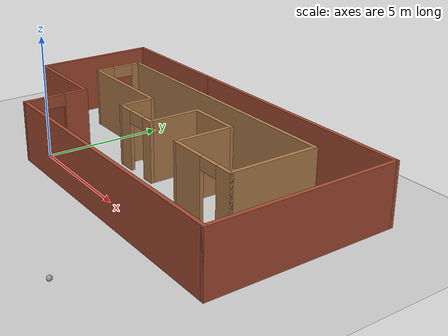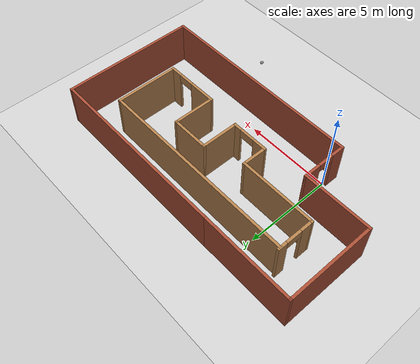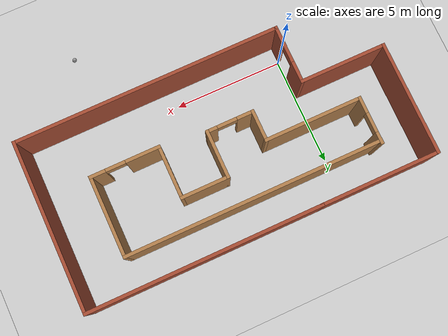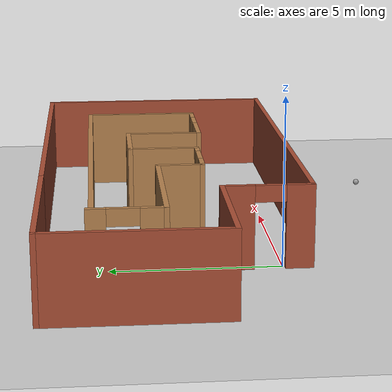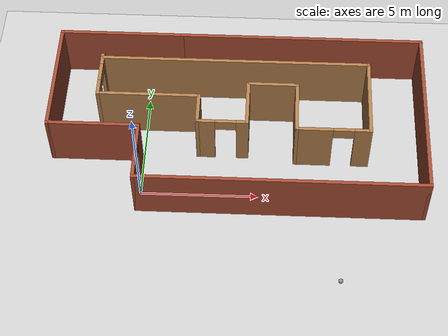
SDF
<sdf version="1.6">
 <world name="default">
  <light name="sun" type="directional">
   <pose>0 0 10 0 -0 0</pose>
   <diffuse>0.8 0.8 0.8 1</diffuse>
   <specular>0.2 0.2 0.2 1</specular>
   <attenuation>
    <range>1000</range>
    <constant>0.9</constant>
    <linear>0.01</linear>
    <quadratic>0.001</quadratic>
   </attenuation>
   <direction>-0.5 0.1 -0.9</direction>
  </light>
  <model name="ground_plane">
   <static>1</static>
   <link name="link">
    <collision name="collision">
     <geometry><plane><normal>0 0 1</normal><size>100 100</size></plane></geometry>
     <surface>
      <contact><collide_bitmask>65535</collide_bitmask></contact>
      <friction><ode><mu>100</mu><mu2>50</mu2></ode></friction>
     </surface>
    </collision>
    <visual name="visual">
     <cast_shadows>0</cast_shadows>
     <geometry><plane><normal>0 0 1</normal><size>100 100</size></plane></geometry>
     <material>
      <script><uri>file://media/materials/scripts/gazebo.material</uri><name>Gazebo/Grey</name></script>
     </material>
    </visual>
   </link>
  </model>
  <gravity>0 0 -9.8</gravity>
  <magnetic_field>6e-06 2.3e-05 -4.2e-05</magnetic_field>
  <atmosphere type="adiabatic"/>
  <physics name="default_physics" default="0" type="ode">
   <max_step_size>0.001</max_step_size>
   <real_time_factor>1</real_time_factor>
   <real_time_update_rate>1000</real_time_update_rate>
  </physics>
  <scene><ambient>0.4 0.4 0.4 1</ambient><background>0.7 0.7 0.7 1</background><shadows>1</shadows></scene>
  <spherical_coordinates>
   <surface_model>EARTH_WGS84</surface_model>
   <latitude_deg>0</latitude_deg>
   <longitude_deg>0</longitude_deg>
   <elevation>0</elevation>
   <heading_deg>0</heading_deg>
  </spherical_coordinates>
  <model name="newworld">
   <pose>4.01971 3.03029 0 0 -0 0</pose>
   <link name="Wall_10">
    <collision name="Wall_10_Collision">
     <geometry><box><size>4 0.15 2.5</size></box></geometry>
     <pose>0 0 1.25 0 -0 0</pose>
    </collision>
    <visual name="Wall_10_Visual">
     <pose>0 0 1.25 0 -0 0</pose>
     <geometry><box><size>4 0.15 2.5</size></box></geometry>
     <material>
      <script><uri>file://media/materials/scripts/gazebo.material</uri><name>Gazebo/Bricks</name></script>
      <ambient>1 1 1 1</ambient>
     </material>
     <meta><layer>0</layer></meta>
    </visual>
    <pose>-6.05 -1.25 0 0 -0 0</pose>
   </link>
   <link name="Wall_11">
    <pose>-4.125 -2.55 0 0 0 -1.5708</pose>
    <visual name="Wall_11_Visual_0">
     <pose>-0.867486 0 1.25 0 -0 0</pose>
     <geometry><box><size>1.01503 0.15 2.5</size></box></geometry>
     <material>
      <script><uri>file://media/materials/scripts/gazebo.material</uri><name>Gazebo/Bricks</name></script>
      <ambient>1 1 1 1</ambient>
     </material>
     <meta><layer>0</layer></meta>
    </visual>
    <collision name="Wall_11_Collision_0">
     <geometry><box><size>1.01503 0.15 2.5</size></box></geometry>
     <pose>-0.867486 0 1.25 0 -0 0</pose>
    </collision>
    <visual name="Wall_11_Visual_1">
     <pose>0.957514 0 1.25 0 -0 0</pose>
     <geometry><box><size>0.834973 0.15 2.5</size></box></geometry>
     <material>
      <script><uri>file://media/materials/scripts/gazebo.material</uri><name>Gazebo/Bricks</name></script>
      <ambient>1 1 1 1</ambient>
     </material>
     <meta><layer>0</layer></meta>
    </visual>
    <collision name="Wall_11_Collision_1">
     <geometry><box><size>0.834973 0.15 2.5</size></box></geometry>
     <pose>0.957514 0 1.25 0 -0 0</pose>
    </collision>
    <visual name="Wall_11_Visual_2">
     <pose>0.090027 0 2.25 0 -0 0</pose>
     <geometry><box><size>0.9 0.15 0.5</size></box></geometry>
     <material>
      <script><uri>file://media/materials/scripts/gazebo.material</uri><name>Gazebo/Bricks</name></script>
      <ambient>1 1 1 1</ambient>
     </material>
     <meta><layer>0</layer></meta>
    </visual>
    <collision name="Wall_11_Collision_2">
     <geometry><box><size>0.9 0.15 0.5</size></box></geometry>
     <pose>0.090027 0 2.25 0 -0 0</pose>
    </collision>
   </link>
   <link name="Wall_12">
    <collision name="Wall_12_Collision">
     <geometry><box><size>12.25 0.15 2.5</size></box></geometry>
     <pose>0 0 1.25 0 -0 0</pose>
    </collision>
    <visual name="Wall_12_Visual">
     <pose>0 0 1.25 0 -0 0</pose>
     <geometry><box><size>12.25 0.15 2.5</size></box></geometry>
     <material>
      <script><uri>file://media/materials/scripts/gazebo.material</uri><name>Gazebo/Bricks</name></script>
      <ambient>1 1 1 1</ambient>
     </material>
     <meta><layer>0</layer></meta>
    </visual>
    <pose>1.925 -3.85 0 0 -0 0</pose>
   </link>
   <link name="Wall_15">
    <collision name="Wall_15_Collision">
     <geometry><box><size>7.85 0.15 2.5</size></box></geometry>
     <pose>0 0 1.25 0 -0 0</pose>
    </collision>
    <visual name="Wall_15_Visual">
     <pose>0 0 1.25 0 -0 0</pose>
     <geometry><box><size>7.85 0.15 2.5</size></box></geometry>
     <material>
      <script><uri>file://media/materials/scripts/gazebo.material</uri><name>Gazebo/Bricks</name></script>
      <ambient>1 1 1 1</ambient>
     </material>
     <meta><layer>0</layer></meta>
    </visual>
    <pose>7.975 0 0 0 -0 1.5708</pose>
   </link>
   <link name="Wall_17">
    <collision name="Wall_17_Collision">
     <geometry><box><size>11.75 0.15 2.5</size></box></geometry>
     <pose>0 0 1.25 0 -0 0</pose>
    </collision>
    <visual name="Wall_17_Visual">
     <pose>0 0 1.25 0 -0 0</pose>
     <geometry><box><size>11.75 0.15 2.5</size></box></geometry>
     <material>
      <script><uri>file://media/materials/scripts/gazebo.material</uri><name>Gazebo/Wood</name></script>
      <ambient>1 1 1 1</ambient>
     </material>
     <meta><layer>0</layer></meta>
    </visual>
    <pose>-0.169813 2.42069 0 0 -0 0</pose>
   </link>
   <link name="Wall_18">
    <collision name="Wall_18_Collision">
     <geometry><box><size>3.75 0.15 2.5</size></box></geometry>
     <pose>0 0 1.25 0 -0 0</pose>
    </collision>
    <visual name="Wall_18_Visual">
     <pose>0 0 1.25 0 -0 0</pose>
     <geometry><box><size>3.75 0.15 2.5</size></box></geometry>
     <material>
      <script><uri>file://media/materials/scripts/gazebo.material</uri><name>Gazebo/Wood</name></script>
      <ambient>1 1 1 1</ambient>
     </material>
     <meta><layer>0</layer></meta>
    </visual>
    <pose>5.63019 0.620692 0 0 0 -1.5708</pose>
   </link>
   <link name="Wall_19">
    <pose>4.08019 -1.17931 0 0 -0 3.14159</pose>
    <visual name="Wall_19_Visual_0">
     <pose>-1.25168 0 1.25 0 -0 0</pose>
     <geometry><box><size>0.74663 0.15 2.5</size></box></geometry>
     <material>
      <script><uri>file://media/materials/scripts/gazebo.material</uri><name>Gazebo/Wood</name></script>
      <ambient>1 1 1 1</ambient>
     </material>
     <meta><layer>0</layer></meta>
    </visual>
    <collision name="Wall_19_Collision_0">
     <geometry><box><size>0.74663 0.15 2.5</size></box></geometry>
     <pose>-1.25168 0 1.25 0 -0 0</pose>
    </collision>
    <visual name="Wall_19_Visual_1">
     <pose>0.823315 0 1.25 0 -0 0</pose>
     <geometry><box><size>1.60337 0.15 2.5</size></box></geometry>
     <material>
      <script><uri>file://media/materials/scripts/gazebo.material</uri><name>Gazebo/Wood</name></script>
      <ambient>1 1 1 1</ambient>
     </material>
     <meta><layer>0</layer></meta>
    </visual>
    <collision name="Wall_19_Collision_1">
     <geometry><box><size>1.60337 0.15 2.5</size></box></geometry>
     <pose>0.823315 0 1.25 0 -0 0</pose>
    </collision>
    <visual name="Wall_19_Visual_2">
     <pose>-0.42837 0 2.25 0 -0 0</pose>
     <geometry><box><size>0.9 0.15 0.5</size></box></geometry>
     <material>
      <script><uri>file://media/materials/scripts/gazebo.material</uri><name>Gazebo/Wood</name></script>
      <ambient>1 1 1 1</ambient>
     </material>
     <meta><layer>0</layer></meta>
    </visual>
    <collision name="Wall_19_Collision_2">
     <geometry><box><size>0.9 0.15 0.5</size></box></geometry>
     <pose>-0.42837 0 2.25 0 -0 0</pose>
    </collision>
   </link>
   <link name="Wall_20">
    <collision name="Wall_20_Collision">
     <geometry><box><size>2.5 0.15 2.5</size></box></geometry>
     <pose>0 0 1.25 0 -0 0</pose>
    </collision>
    <visual name="Wall_20_Visual">
     <pose>0 0 1.25 0 -0 0</pose>
     <geometry><box><size>2.5 0.15 2.5</size></box></geometry>
     <material>
      <script><uri>file://media/materials/scripts/gazebo.material</uri><name>Gazebo/Wood</name></script>
      <ambient>1 1 1 1</ambient>
     </material>
     <meta><layer>0</layer></meta>
    </visual>
    <pose>2.53019 -0.004308 0 0 -0 1.5708</pose>
   </link>
   <link name="Wall_21">
    <collision name="Wall_21_Collision">
     <geometry><box><size>2.25 0.15 2.5</size></box></geometry>
     <pose>0 0 1.25 0 -0 0</pose>
    </collision>
    <visual name="Wall_21_Visual">
     <pose>0 0 1.25 0 -0 0</pose>
     <geometry><box><size>2.25 0.15 2.5</size></box></geometry>
     <material>
      <script><uri>file://media/materials/scripts/gazebo.material</uri><name>Gazebo/Wood</name></script>
      <ambient>1 1 1 1</ambient>
     </material>
     <meta><layer>0</layer></meta>
    </visual>
    <pose>1.48019 1.17069 0 0 -0 3.14159</pose>
   </link>
   <link name="Wall_22">
    <collision name="Wall_22_Collision">
     <geometry><box><size>2.25 0.15 2.5</size></box></geometry>
     <pose>0 0 1.25 0 -0 0</pose>
    </collision>
    <visual name="Wall_22_Visual">
     <pose>0 0 1.25 0 -0 0</pose>
     <geometry><box><size>2.25 0.15 2.5</size></box></geometry>
     <material>
      <script><uri>file://media/materials/scripts/gazebo.material</uri><name>Gazebo/Wood</name></script>
      <ambient>1 1 1 1</ambient>
     </material>
     <meta><layer>0</layer></meta>
    </visual>
    <pose>0.430187 0.120692 0 0 0 -1.5708</pose>
   </link>
   <link name="Wall_23">
    <pose>-0.619813 -0.929308 0 0 -0 3.14159</pose>
    <visual name="Wall_23_Visual_0">
     <pose>-0.858537 0 1.25 0 -0 0</pose>
     <geometry><box><size>0.532927 0.15 2.5</size></box></geometry>
     <material>
      <script><uri>file://media/materials/scripts/gazebo.material</uri><name>Gazebo/Wood</name></script>
      <ambient>1 1 1 1</ambient>
     </material>
     <meta><layer>0</layer></meta>
    </visual>
    <collision name="Wall_23_Collision_0">
     <geometry><box><size>0.532927 0.15 2.5</size></box></geometry>
     <pose>-0.858537 0 1.25 0 -0 0</pose>
    </collision>
    <visual name="Wall_23_Visual_1">
     <pose>0.716463 0 1.25 0 -0 0</pose>
     <geometry><box><size>0.817073 0.15 2.5</size></box></geometry>
     <material>
      <script><uri>file://media/materials/scripts/gazebo.material</uri><name>Gazebo/Wood</name></script>
      <ambient>1 1 1 1</ambient>
     </material>
     <meta><layer>0</layer></meta>
    </visual>
    <collision name="Wall_23_Collision_1">
     <geometry><box><size>0.817073 0.15 2.5</size></box></geometry>
     <pose>0.716463 0 1.25 0 -0 0</pose>
    </collision>
    <visual name="Wall_23_Visual_2">
     <pose>-0.142073 0 2.25 0 -0 0</pose>
     <geometry><box><size>0.9 0.15 0.5</size></box></geometry>
     <material>
      <script><uri>file://media/materials/scripts/gazebo.material</uri><name>Gazebo/Wood</name></script>
      <ambient>1 1 1 1</ambient>
     </material>
     <meta><layer>0</layer></meta>
    </visual>
    <collision name="Wall_23_Collision_2">
     <geometry><box><size>0.9 0.15 0.5</size></box></geometry>
     <pose>-0.142073 0 2.25 0 -0 0</pose>
    </collision>
   </link>
   <link name="Wall_24">
    <collision name="Wall_24_Collision">
     <geometry><box><size>1.5 0.15 2.5</size></box></geometry>
     <pose>0 0 1.25 0 -0 0</pose>
    </collision>
    <visual name="Wall_24_Visual">
     <pose>0 0 1.25 0 -0 0</pose>
     <geometry><box><size>1.5 0.15 2.5</size></box></geometry>
     <material>
      <script><uri>file://media/materials/scripts/gazebo.material</uri><name>Gazebo/Wood</name></script>
      <ambient>1 1 1 1</ambient>
     </material>
     <meta><layer>0</layer></meta>
    </visual>
    <pose>-1.66981 -0.254308 0 0 -0 1.5708</pose>
   </link>
   <link name="Wall_25">
    <collision name="Wall_25_Collision">
     <geometry><box><size>4.5 0.15 2.5</size></box></geometry>
     <pose>0 0 1.25 0 -0 0</pose>
    </collision>
    <visual name="Wall_25_Visual">
     <pose>0 0 1.25 0 -0 0</pose>
     <geometry><box><size>4.5 0.15 2.5</size></box></geometry>
     <material>
      <script><uri>file://media/materials/scripts/gazebo.material</uri><name>Gazebo/Wood</name></script>
      <ambient>1 1 1 1</ambient>
     </material>
     <meta><layer>0</layer></meta>
    </visual>
    <pose>-3.84481 0.420692 0 0 -0 3.14159</pose>
   </link>
   <link name="Wall_26">
    <pose>-6.01981 1.47069 0 0 -0 1.5708</pose>
    <visual name="Wall_26_Visual_0">
     <pose>-0.734227 0 1.25 0 -0 0</pose>
     <geometry><box><size>0.781547 0.15 2.5</size></box></geometry>
     <material>
      <script><uri>file://media/materials/scripts/gazebo.material</uri><name>Gazebo/Wood</name></script>
      <ambient>1 1 1 1</ambient>
     </material>
     <meta><layer>0</layer></meta>
    </visual>
    <collision name="Wall_26_Collision_0">
     <geometry><box><size>0.781547 0.15 2.5</size></box></geometry>
     <pose>-0.734227 0 1.25 0 -0 0</pose>
    </collision>
    <visual name="Wall_26_Visual_1">
     <pose>0.840773 0 1.25 0 -0 0</pose>
     <geometry><box><size>0.568453 0.15 2.5</size></box></geometry>
     <material>
      <script><uri>file://media/materials/scripts/gazebo.material</uri><name>Gazebo/Wood</name></script>
      <ambient>1 1 1 1</ambient>
     </material>
     <meta><layer>0</layer></meta>
    </visual>
    <collision name="Wall_26_Collision_1">
     <geometry><box><size>0.568453 0.15 2.5</size></box></geometry>
     <pose>0.840773 0 1.25 0 -0 0</pose>
    </collision>
    <visual name="Wall_26_Visual_2">
     <pose>0.106547 0 2.25 0 -0 0</pose>
     <geometry><box><size>0.9 0.15 0.5</size></box></geometry>
     <material>
      <script><uri>file://media/materials/scripts/gazebo.material</uri><name>Gazebo/Wood</name></script>
      <ambient>1 1 1 1</ambient>
     </material>
     <meta><layer>0</layer></meta>
    </visual>
    <collision name="Wall_26_Collision_2">
     <geometry><box><size>0.9 0.15 0.5</size></box></geometry>
     <pose>0.106547 0 2.25 0 -0 0</pose>
    </collision>
   </link>
   <link name="Wall_5">
    <collision name="Wall_5_Collision">
     <geometry><box><size>10.75 0.15 2.5</size></box></geometry>
     <pose>0 0 1.25 0 -0 0</pose>
    </collision>
    <visual name="Wall_5_Visual">
     <pose>0 0 1.25 0 -0 0</pose>
     <geometry><box><size>10.75 0.15 2.5</size></box></geometry>
     <material>
      <script><uri>file://media/materials/scripts/gazebo.material</uri><name>Gazebo/Bricks</name></script>
      <ambient>1 1 1 1</ambient>
     </material>
     <meta><layer>0</layer></meta>
    </visual>
    <pose>2.675 3.85 0 0 -0 0</pose>
   </link>
   <link name="Wall_7">
    <collision name="Wall_7_Collision">
     <geometry><box><size>5.5 0.15 2.5</size></box></geometry>
     <pose>0 0 1.25 0 -0 0</pose>
    </collision>
    <visual name="Wall_7_Visual">
     <pose>0 0 1.25 0 -0 0</pose>
     <geometry><box><size>5.5 0.15 2.5</size></box></geometry>
     <material>
      <script><uri>file://media/materials/scripts/gazebo.material</uri><name>Gazebo/Bricks</name></script>
      <ambient>1 1 1 1</ambient>
     </material>
     <meta><layer>0</layer></meta>
    </visual>
    <pose>-5.3 3.85 0 0 -0 3.14159</pose>
   </link>
   <link name="Wall_8">
    <collision name="Wall_8_Collision">
     <geometry><box><size>5.25 0.15 2.5</size></box></geometry>
     <pose>0 0 1.25 0 -0 0</pose>
    </collision>
    <visual name="Wall_8_Visual">
     <pose>0 0 1.25 0 -0 0</pose>
     <geometry><box><size>5.25 0.15 2.5</size></box></geometry>
     <material>
      <script><uri>file://media/materials/scripts/gazebo.material</uri><name>Gazebo/Bricks</name></script>
      <ambient>1 1 1 1</ambient>
     </material>
     <meta><layer>0</layer></meta>
    </visual>
    <pose>-7.975 1.3 0 0 0 -1.5708</pose>
   </link>
   <static>1</static>
  </model>
  <model name="by_ball">
   <link name="link_0">
    <inertial>
     <mass>1</mass>
     <inertia><ixx>0.1</ixx><ixy>0</ixy><ixz>0</ixz><iyy>0.1</iyy><iyz>0</iyz><izz>0.1</izz></inertia>
    </inertial>
    <visual name="visual">
     <geometry><sphere><radius>0.1</radius></sphere></geometry>
     <material>
      <lighting>1</lighting>
      <script><uri>file://media/materials/scripts/gazebo.material</uri><name>Gazebo/Grey</name></script>
      <shader type="pixel"><normal_map>__default__</normal_map></shader>
      <ambient>1 1 1 1</ambient>
      <diffuse>1 1 1 1</diffuse>
      <specular>1 1 1 1</specular>
      <emissive>1 1 1 1</emissive>
     </material>
    </visual>
    <collision name="collision">
     <geometry><sphere><radius>0.1</radius></sphere></geometry>
     <surface>
      <friction>
       <ode><mu>1</mu><mu2>1</mu2><fdir1>0 0 0</fdir1><slip1>0</slip1><slip2>0</slip2></ode>
       <torsional>
        <coefficient>1</coefficient>
        <patch_radius>0</patch_radius>
        <surface_radius>0</surface_radius>
        <use_patch_radius>1</use_patch_radius>
        <ode><slip>0</slip></ode>
       </torsional>
      </friction>
      <bounce><restitution_coefficient>0</restitution_coefficient><threshold>1e+06</threshold></bounce>
      <contact>
       <collide_without_contact>0</collide_without_contact>
       <collide_without_contact_bitmask>1</collide_without_contact_bitmask>
       <collide_bitmask>1</collide_bitmask>
       <ode>
        <soft_cfm>0</soft_cfm>
        <soft_erp>0.2</soft_erp>
        <kp>1e+13</kp>
        <kd>1</kd>
        <max_vel>0.01</max_vel>
        <min_depth>0</min_depth>
       </ode>
       <bullet>
        <split_impulse>1</split_impulse>
        <split_impulse_penetration_threshold>-0.01</split_impulse_penetration_threshold>
        <soft_cfm>0</soft_cfm>
        <soft_erp>0.2</soft_erp>
        <kp>1e+13</kp>
        <kd>1</kd>
       </bullet>
      </contact>
     </surface>
    </collision>
   </link>
   <static>0</static>
   <pose>8.47889 -4.01147 0.1 0 -0 0</pose>
  </model>
  <light name="user_point_light_0" type="point">
   <pose>3.7714 0.654779 1 0 -0 0</pose>
   <diffuse>0.5 0.5 0.5 1</diffuse>
   <specular>0.1 0.1 0.1 1</specular>
   <attenuation>
    <range>20</range>
    <constant>0.5</constant>
    <linear>0.01</linear>
    <quadratic>0.001</quadratic>
   </attenuation>
   <cast_shadows>0</cast_shadows>
   <direction>0 0 -1</direction>
  </light>
 </world>
</sdf>
